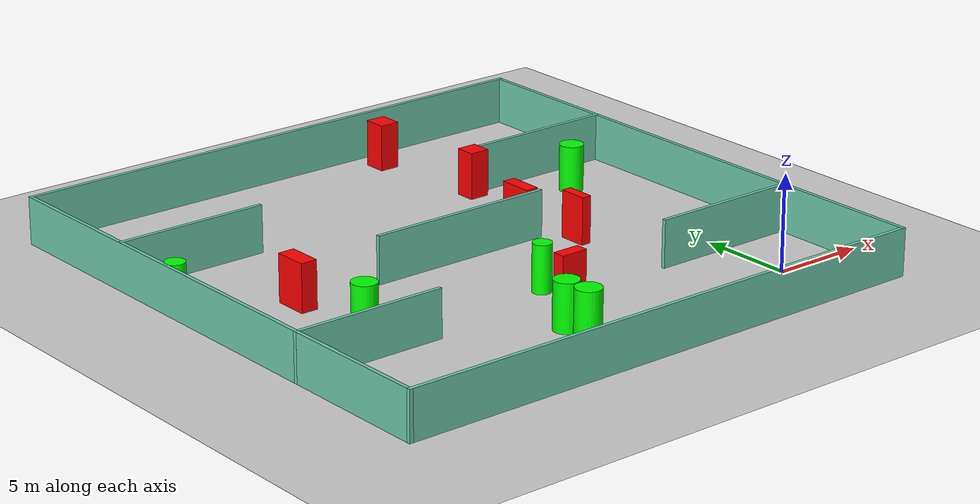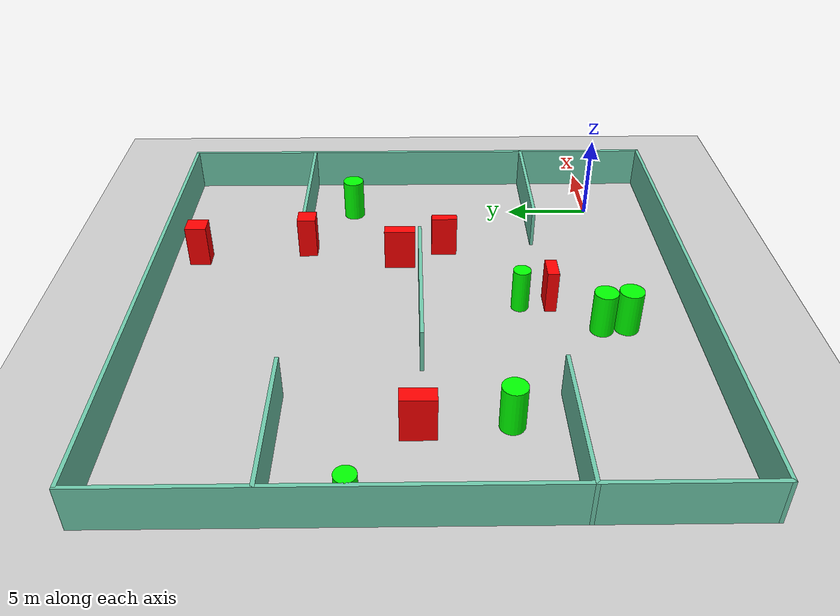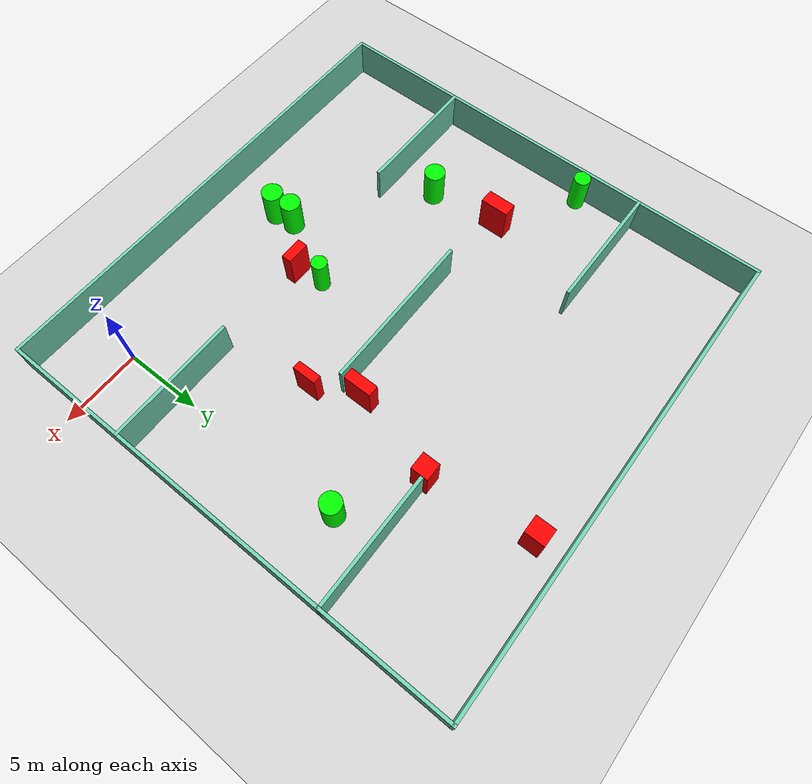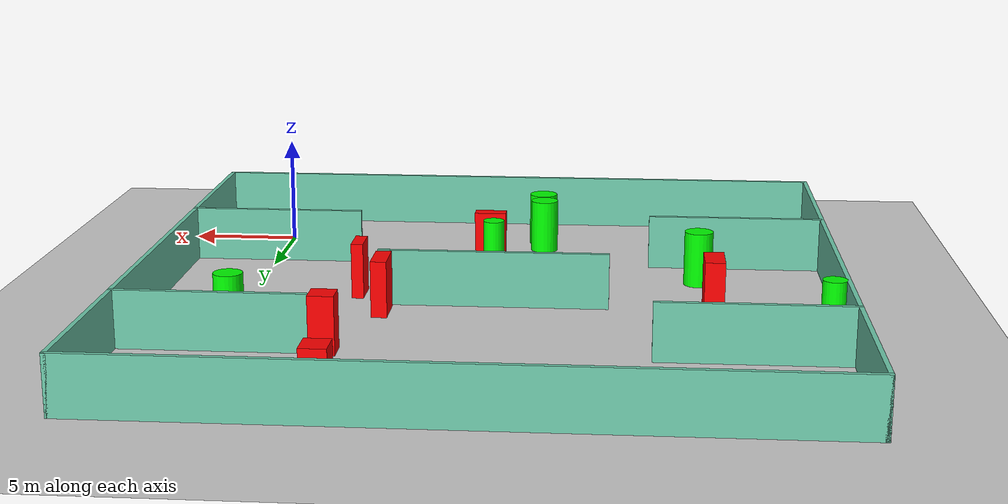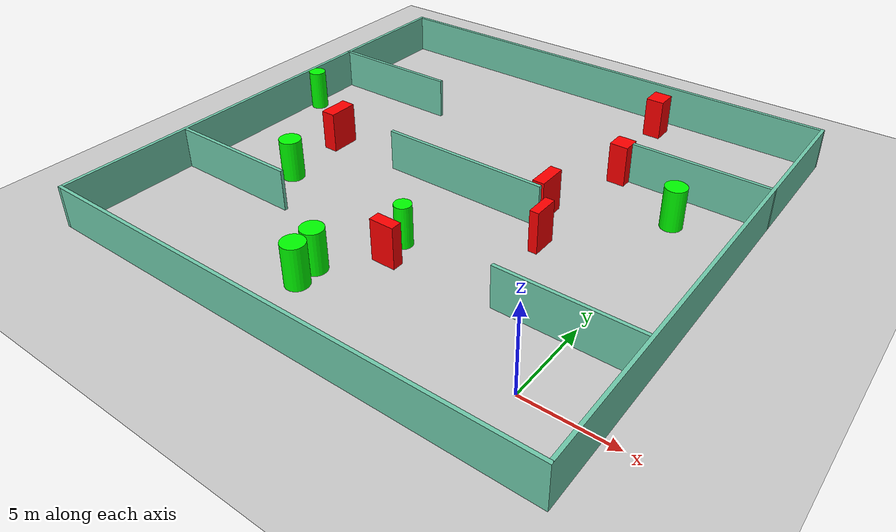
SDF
<sdf version="1.7">
 <world name="default">
  <light name="sun" type="directional">
   <pose>0 0 10 0 -0 0</pose>
   <diffuse>0.8 0.8 0.8 1</diffuse>
   <specular>0.2 0.2 0.2 1</specular>
   <attenuation>
    <range>1000</range>
    <constant>0.9</constant>
    <linear>0.01</linear>
    <quadratic>0.001</quadratic>
   </attenuation>
   <direction>-0.5 0.1 -0.9</direction>
   <spot><inner_angle>0</inner_angle><outer_angle>0</outer_angle><falloff>0</falloff></spot>
  </light>
  <model name="ground_plane">
   <static>1</static>
   <link name="link">
    <collision name="collision">
     <geometry><plane><normal>0 0 1</normal><size>100 100</size></plane></geometry>
     <surface>
      <contact><collide_bitmask>65535</collide_bitmask></contact>
      <friction><ode><mu>100</mu><mu2>50</mu2></ode></friction>
     </surface>
    </collision>
    <visual name="visual">
     <cast_shadows>0</cast_shadows>
     <geometry><plane><normal>0 0 1</normal><size>100 100</size></plane></geometry>
     <material>
      <script><uri>file://media/materials/scripts/gazebo.material</uri><name>Gazebo/Grey</name></script>
     </material>
    </visual>
   </link>
  </model>
  <gravity>0 0 -9.8</gravity>
  <magnetic_field>6e-06 2.3e-05 -4.2e-05</magnetic_field>
  <atmosphere type="adiabatic"/>
  <physics type="ode">
   <max_step_size>0.001</max_step_size>
   <real_time_factor>1</real_time_factor>
   <real_time_update_rate>1000</real_time_update_rate>
  </physics>
  <scene><ambient>0.4 0.4 0.4 1</ambient><background>0.7 0.7 0.7 1</background><shadows>1</shadows></scene>
  <spherical_coordinates>
   <surface_model>EARTH_WGS84</surface_model>
   <latitude_deg>0</latitude_deg>
   <longitude_deg>0</longitude_deg>
   <elevation>0</elevation>
   <heading_deg>0</heading_deg>
  </spherical_coordinates>
  <model name="my_base_walls">
   <link name="Wall_10">
    <collision name="Wall_10_Collision">
     <geometry><box><size>8.2 0.2 2.5</size></box></geometry>
     <pose>0 0 1.25 0 -0 0</pose>
    </collision>
    <visual name="Wall_10_Visual">
     <pose>0 0 1.25 0 -0 0</pose>
     <geometry><box><size>8.2 0.2 2.5</size></box></geometry>
     <material>
      <script><uri>file://media/materials/scripts/gazebo.material</uri><name>Gazebo/Grey</name></script>
      <ambient>0.435294 0.796078 0.67451 1</ambient>
     </material>
     <meta><layer>0</layer></meta>
    </visual>
    <pose>-11 -7 0 0 -0 0</pose>
   </link>
   <link name="Wall_12">
    <collision name="Wall_12_Collision">
     <geometry><box><size>8.2 0.2 2.5</size></box></geometry>
     <pose>0 0 1.25 0 -0 0</pose>
    </collision>
    <visual name="Wall_12_Visual">
     <pose>0 0 1.25 0 -0 0</pose>
     <geometry><box><size>8.2 0.2 2.5</size></box></geometry>
     <material>
      <script><uri>file://media/materials/scripts/gazebo.material</uri><name>Gazebo/Grey</name></script>
      <ambient>0.435294 0.796078 0.67451 1</ambient>
     </material>
     <meta><layer>0</layer></meta>
    </visual>
    <pose>-11 7 0 0 -0 0</pose>
   </link>
   <link name="Wall_14">
    <collision name="Wall_14_Collision">
     <geometry><box><size>8.2 0.2 2.5</size></box></geometry>
     <pose>0 0 1.25 0 -0 0</pose>
    </collision>
    <visual name="Wall_14_Visual">
     <pose>0 0 1.25 0 -0 0</pose>
     <geometry><box><size>8.2 0.2 2.5</size></box></geometry>
     <material>
      <script><uri>file://media/materials/scripts/gazebo.material</uri><name>Gazebo/Grey</name></script>
      <ambient>0.435294 0.796078 0.67451 1</ambient>
     </material>
     <meta><layer>0</layer></meta>
    </visual>
    <pose>11 7 0 0 -0 3.14159</pose>
   </link>
   <link name="Wall_16">
    <collision name="Wall_16_Collision">
     <geometry><box><size>10.2 0.2 2.5</size></box></geometry>
     <pose>0 0 1.25 0 -0 0</pose>
    </collision>
    <visual name="Wall_16_Visual">
     <pose>0 0 1.25 0 -0 0</pose>
     <geometry><box><size>10.2 0.2 2.5</size></box></geometry>
     <material>
      <script><uri>file://media/materials/scripts/gazebo.material</uri><name>Gazebo/Grey</name></script>
      <ambient>0.435294 0.796078 0.67451 1</ambient>
     </material>
     <meta><layer>0</layer></meta>
    </visual>
    <pose>0 0 0 0 -0 3.14159</pose>
   </link>
   <link name="Wall_2">
    <collision name="Wall_2_Collision">
     <geometry><box><size>30.2 0.2 2.5</size></box></geometry>
     <pose>0 0 1.25 0 -0 0</pose>
    </collision>
    <visual name="Wall_2_Visual">
     <pose>0 0 1.25 0 -0 0</pose>
     <geometry><box><size>30.2 0.2 2.5</size></box></geometry>
     <material>
      <script><uri>file://media/materials/scripts/gazebo.material</uri><name>Gazebo/Grey</name></script>
      <ambient>0.435294 0.796078 0.67451 1</ambient>
     </material>
     <meta><layer>0</layer></meta>
    </visual>
    <pose>0 -15 0 0 -0 3.14159</pose>
   </link>
   <link name="Wall_3">
    <collision name="Wall_3_Collision">
     <geometry><box><size>30.2 0.2 2.5</size></box></geometry>
     <pose>0 0 1.25 0 -0 0</pose>
    </collision>
    <visual name="Wall_3_Visual">
     <pose>0 0 1.25 0 -0 0</pose>
     <geometry><box><size>30.2 0.2 2.5</size></box></geometry>
     <material>
      <script><uri>file://media/materials/scripts/gazebo.material</uri><name>Gazebo/Grey</name></script>
      <ambient>0.435294 0.796078 0.67451 1</ambient>
     </material>
     <meta><layer>0</layer></meta>
    </visual>
    <pose>-15 0 0 0 -0 1.5708</pose>
   </link>
   <link name="Wall_4">
    <collision name="Wall_4_Collision">
     <geometry><box><size>30.2 0.2 2.5</size></box></geometry>
     <pose>0 0 1.25 0 -0 0</pose>
    </collision>
    <visual name="Wall_4_Visual">
     <pose>0 0 1.25 0 -0 0</pose>
     <geometry><box><size>30.2 0.2 2.5</size></box></geometry>
     <material>
      <script><uri>file://media/materials/scripts/gazebo.material</uri><name>Gazebo/Grey</name></script>
      <ambient>0.435294 0.796078 0.67451 1</ambient>
     </material>
     <meta><layer>0</layer></meta>
    </visual>
    <pose>0 15 0 0 -0 0</pose>
   </link>
   <link name="Wall_6">
    <collision name="Wall_6_Collision">
     <geometry><box><size>30.2 0.2 2.5</size></box></geometry>
     <pose>0 0 1.25 0 -0 0</pose>
    </collision>
    <visual name="Wall_6_Visual">
     <pose>0 0 1.25 0 -0 0</pose>
     <geometry><box><size>30.2 0.2 2.5</size></box></geometry>
     <material>
      <script><uri>file://media/materials/scripts/gazebo.material</uri><name>Gazebo/Grey</name></script>
      <ambient>0.435294 0.796078 0.67451 1</ambient>
     </material>
     <meta><layer>0</layer></meta>
    </visual>
    <pose>15 0 0 0 -0 1.5708</pose>
   </link>
   <link name="Wall_8">
    <collision name="Wall_8_Collision">
     <geometry><box><size>8.2 0.2 2.5</size></box></geometry>
     <pose>0 0 1.25 0 -0 0</pose>
    </collision>
    <visual name="Wall_8_Visual">
     <pose>0 0 1.25 0 -0 0</pose>
     <geometry><box><size>8.2 0.2 2.5</size></box></geometry>
     <material>
      <script><uri>file://media/materials/scripts/gazebo.material</uri><name>Gazebo/Grey</name></script>
      <ambient>0.435294 0.796078 0.67451 1</ambient>
     </material>
     <meta><layer>0</layer></meta>
    </visual>
    <pose>11 -7 0 0 -0 3.14159</pose>
   </link>
   <static>1</static>
   <pose>-11 11 0 0 -0 0</pose>
  </model>
  <model name="cylinder1">
   <static>1</static>
   <link name="link">
    <inertial>
     <mass>1</mass>
     <inertia><ixx>0.5</ixx><ixy>0</ixy><ixz>0</ixz><iyy>0.5</iyy><iyz>0</iyz><izz>1</izz></inertia>
    </inertial>
    <collision name="collision">
     <geometry><cylinder><radius>0.6725590174996585</radius><length>2.5</length></cylinder></geometry>
    </collision>
    <visual name="visual">
     <geometry><cylinder><radius>0.6725590174996585</radius><length>2.5</length></cylinder></geometry>
     <material>
      <ambient>0 1 0 1</ambient>
      <diffuse>0 1 0 1</diffuse>
      <specular>0.1 0.1 0.1 1</specular>
      <emissive>0 0 0 0</emissive>
     </material>
    </visual>
   </link>
   <pose>-12.677951457313943 -0.220448777080136 1.25 0 0 0</pose>
  </model>
  <model name="cylinder2">
   <static>1</static>
   <link name="link">
    <inertial>
     <mass>1</mass>
     <inertia><ixx>0.5</ixx><ixy>0</ixy><ixz>0</ixz><iyy>0.5</iyy><iyz>0</iyz><izz>1</izz></inertia>
    </inertial>
    <collision name="collision">
     <geometry><cylinder><radius>0.49480701121021126</radius><length>2.5</length></cylinder></geometry>
    </collision>
    <visual name="visual">
     <geometry><cylinder><radius>0.49480701121021126</radius><length>2.5</length></cylinder></geometry>
     <material>
      <ambient>0 1 0 1</ambient>
      <diffuse>0 1 0 1</diffuse>
      <specular>0.1 0.1 0.1 1</specular>
      <emissive>0 0 0 0</emissive>
     </material>
    </visual>
   </link>
   <pose>-10.606093847899395 5.412043857380326 1.25 0 0 0</pose>
  </model>
  <model name="cylinder3">
   <static>1</static>
   <link name="link">
    <inertial>
     <mass>1</mass>
     <inertia><ixx>0.5</ixx><ixy>0</ixy><ixz>0</ixz><iyy>0.5</iyy><iyz>0</iyz><izz>1</izz></inertia>
    </inertial>
    <collision name="collision">
     <geometry><cylinder><radius>0.6520346294856646</radius><length>2.5</length></cylinder></geometry>
    </collision>
    <visual name="visual">
     <geometry><cylinder><radius>0.6520346294856646</radius><length>2.5</length></cylinder></geometry>
     <material>
      <ambient>0 1 0 1</ambient>
      <diffuse>0 1 0 1</diffuse>
      <specular>0.1 0.1 0.1 1</specular>
      <emissive>0 0 0 0</emissive>
     </material>
    </visual>
   </link>
   <pose>-20.150323978229874 6.753439220954903 1.25 0 0 0</pose>
  </model>
  <model name="cylinder4">
   <static>1</static>
   <link name="link">
    <inertial>
     <mass>1</mass>
     <inertia><ixx>0.5</ixx><ixy>0</ixy><ixz>0</ixz><iyy>0.5</iyy><iyz>0</iyz><izz>1</izz></inertia>
    </inertial>
    <collision name="collision">
     <geometry><cylinder><radius>0.6514921143237717</radius><length>2.5</length></cylinder></geometry>
    </collision>
    <visual name="visual">
     <geometry><cylinder><radius>0.6514921143237717</radius><length>2.5</length></cylinder></geometry>
     <material>
      <ambient>0 1 0 1</ambient>
      <diffuse>0 1 0 1</diffuse>
      <specular>0.1 0.1 0.1 1</specular>
      <emissive>0 0 0 0</emissive>
     </material>
    </visual>
   </link>
   <pose>-12.79384971377776 1.1618352468073274 1.25 0 0 0</pose>
  </model>
  <model name="cylinder5">
   <static>1</static>
   <link name="link">
    <inertial>
     <mass>1</mass>
     <inertia><ixx>0.5</ixx><ixy>0</ixy><ixz>0</ixz><iyy>0.5</iyy><iyz>0</iyz><izz>1</izz></inertia>
    </inertial>
    <collision name="collision">
     <geometry><cylinder><radius>0.5228209936022966</radius><length>2.5</length></cylinder></geometry>
    </collision>
    <visual name="visual">
     <geometry><cylinder><radius>0.5228209936022966</radius><length>2.5</length></cylinder></geometry>
     <material>
      <ambient>0 1 0 1</ambient>
      <diffuse>0 1 0 1</diffuse>
      <specular>0.1 0.1 0.1 1</specular>
      <emissive>0 0 0 0</emissive>
     </material>
    </visual>
   </link>
   <pose>-25.442321299860478 14.292900691818915 1.25 0 0 0</pose>
  </model>
  <model name="cylinder6">
   <static>1</static>
   <link name="link">
    <inertial>
     <mass>1</mass>
     <inertia><ixx>0.5</ixx><ixy>0</ixy><ixz>0</ixz><iyy>0.5</iyy><iyz>0</iyz><izz>1</izz></inertia>
    </inertial>
    <collision name="collision">
     <geometry><cylinder><radius>0.6333750509543922</radius><length>2.5</length></cylinder></geometry>
    </collision>
    <visual name="visual">
     <geometry><cylinder><radius>0.6333750509543922</radius><length>2.5</length></cylinder></geometry>
     <material>
      <ambient>0 1 0 1</ambient>
      <diffuse>0 1 0 1</diffuse>
      <specular>0.1 0.1 0.1 1</specular>
      <emissive>0 0 0 0</emissive>
     </material>
    </visual>
   </link>
   <pose>-0.18675113513128494 15.207376792651417 1.25 0 0 0</pose>
  </model>
  <model name="box1">
   <static>1</static>
   <link name="link">
    <inertial>
     <mass>1</mass>
     <inertia><ixx>0.083</ixx><ixy>0</ixy><ixz>0</ixz><iyy>0.083</iyy><iyz>0</iyz><izz>0.083</izz></inertia>
    </inertial>
    <collision name="collision">
     <geometry><box><size>1.086068922128389 1.2304614033949866 2.5</size></box></geometry>
    </collision>
    <visual name="visual">
     <geometry><box><size>1.086068922128389 1.2304614033949866 2.5</size></box></geometry>
     <material>
      <ambient>1 0 0 1</ambient>
      <diffuse>1 0 0 1</diffuse>
      <specular>0.1 0.1 0.1 1</specular>
      <emissive>0 0 0 0</emissive>
     </material>
    </visual>
    <sensor name="my_contact" type="contact">
     <contact><collision>box_collision</collision><topic>__default_topic__</topic></contact>
    </sensor>
   </link>
   <pose>-5.53228862076039 24.25734786774099 1.25 0 0 0</pose>
  </model>
  <model name="box2">
   <static>1</static>
   <link name="link">
    <inertial>
     <mass>1</mass>
     <inertia><ixx>0.083</ixx><ixy>0</ixy><ixz>0</ixz><iyy>0.083</iyy><iyz>0</iyz><izz>0.083</izz></inertia>
    </inertial>
    <collision name="collision">
     <geometry><box><size>0.5338785291933462 1.5161411124482713 2.5</size></box></geometry>
    </collision>
    <visual name="visual">
     <geometry><box><size>0.5338785291933462 1.5161411124482713 2.5</size></box></geometry>
     <material>
      <ambient>1 0 0 1</ambient>
      <diffuse>1 0 0 1</diffuse>
      <specular>0.1 0.1 0.1 1</specular>
      <emissive>0 0 0 0</emissive>
     </material>
    </visual>
    <sensor name="my_contact" type="contact">
     <contact><collision>box_collision</collision><topic>__default_topic__</topic></contact>
    </sensor>
   </link>
   <pose>-4.856864236067068 9.504013826617673 1.25 0 0 0</pose>
  </model>
  <model name="box3">
   <static>1</static>
   <link name="link">
    <inertial>
     <mass>1</mass>
     <inertia><ixx>0.083</ixx><ixy>0</ixy><ixz>0</ixz><iyy>0.083</iyy><iyz>0</iyz><izz>0.083</izz></inertia>
    </inertial>
    <collision name="collision">
     <geometry><box><size>1.0909566585955561 1.0939025578220127 2.5</size></box></geometry>
    </collision>
    <visual name="visual">
     <geometry><box><size>1.0909566585955561 1.0939025578220127 2.5</size></box></geometry>
     <material>
      <ambient>1 0 0 1</ambient>
      <diffuse>1 0 0 1</diffuse>
      <specular>0.1 0.1 0.1 1</specular>
      <emissive>0 0 0 0</emissive>
     </material>
    </visual>
    <sensor name="my_contact" type="contact">
     <contact><collision>box_collision</collision><topic>__default_topic__</topic></contact>
    </sensor>
   </link>
   <pose>-4.6484048777115525 17.798753684182582 1.25 0 0 0</pose>
  </model>
  <model name="box4">
   <static>1</static>
   <link name="link">
    <inertial>
     <mass>1</mass>
     <inertia><ixx>0.083</ixx><ixy>0</ixy><ixz>0</ixz><iyy>0.083</iyy><iyz>0</iyz><izz>0.083</izz></inertia>
    </inertial>
    <collision name="collision">
     <geometry><box><size>0.69549316196661 1.8031140595102402 2.5</size></box></geometry>
    </collision>
    <visual name="visual">
     <geometry><box><size>0.69549316196661 1.8031140595102402 2.5</size></box></geometry>
     <material>
      <ambient>1 0 0 1</ambient>
      <diffuse>1 0 0 1</diffuse>
      <specular>0.1 0.1 0.1 1</specular>
      <emissive>0 0 0 0</emissive>
     </material>
    </visual>
    <sensor name="my_contact" type="contact">
     <contact><collision>box_collision</collision><topic>__default_topic__</topic></contact>
    </sensor>
   </link>
   <pose>-6.219131769215657 12.184247713811239 1.25 0 0 0</pose>
  </model>
  <model name="box5">
   <static>1</static>
   <link name="link">
    <inertial>
     <mass>1</mass>
     <inertia><ixx>0.083</ixx><ixy>0</ixy><ixz>0</ixz><iyy>0.083</iyy><iyz>0</iyz><izz>0.083</izz></inertia>
    </inertial>
    <collision name="collision">
     <geometry><box><size>0.8856712117852601 1.8047000346763897 2.5</size></box></geometry>
    </collision>
    <visual name="visual">
     <geometry><box><size>0.8856712117852601 1.8047000346763897 2.5</size></box></geometry>
     <material>
      <ambient>1 0 0 1</ambient>
      <diffuse>1 0 0 1</diffuse>
      <specular>0.1 0.1 0.1 1</specular>
      <emissive>0 0 0 0</emissive>
     </material>
    </visual>
    <sensor name="my_contact" type="contact">
     <contact><collision>box_collision</collision><topic>__default_topic__</topic></contact>
    </sensor>
   </link>
   <pose>-20.641772889604866 11.235914892276883 1.25 0 0 0</pose>
  </model>
  <model name="box6">
   <static>1</static>
   <link name="link">
    <inertial>
     <mass>1</mass>
     <inertia><ixx>0.083</ixx><ixy>0</ixy><ixz>0</ixz><iyy>0.083</iyy><iyz>0</iyz><izz>0.083</izz></inertia>
    </inertial>
    <collision name="collision">
     <geometry><box><size>1.4676115015677702 0.6552697464171364 2.5</size></box></geometry>
    </collision>
    <visual name="visual">
     <geometry><box><size>1.4676115015677702 0.6552697464171364 2.5</size></box></geometry>
     <material>
      <ambient>1 0 0 1</ambient>
      <diffuse>1 0 0 1</diffuse>
      <specular>0.1 0.1 0.1 1</specular>
      <emissive>0 0 0 0</emissive>
     </material>
    </visual>
    <sensor name="my_contact" type="contact">
     <contact><collision>box_collision</collision><topic>__default_topic__</topic></contact>
    </sensor>
   </link>
   <pose>-10.327494472290445 3.730623904412064 1.25 0 0 0</pose>
  </model>
 </world>
</sdf>
